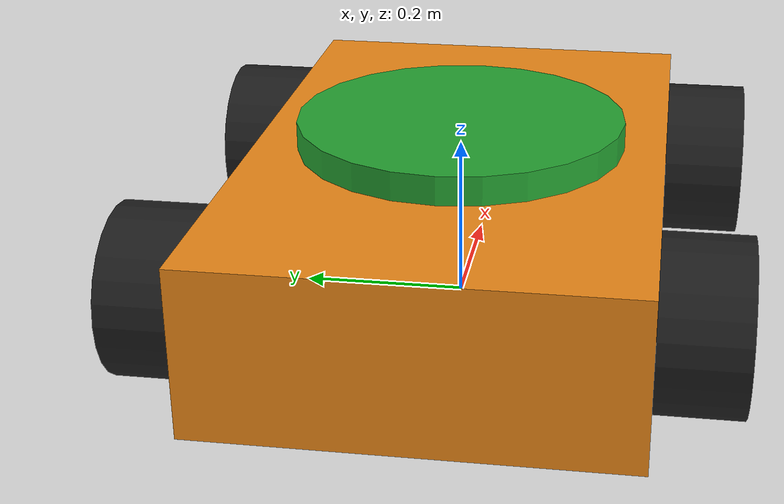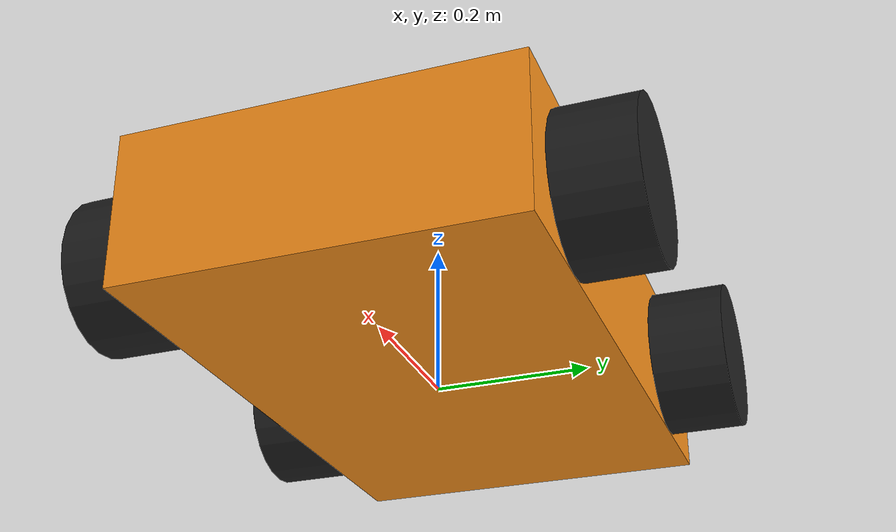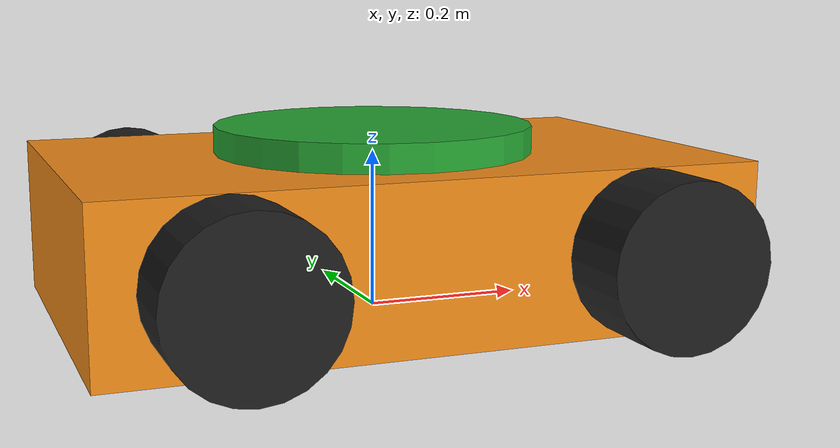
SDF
<?xml version="1.0" ?>
<sdf version="1.5">
  <model name="ugv_rover">
    <static>false</static>
    <link name="chassis">
      <pose>0 0 0.1 0 0 0</pose>
      <inertial>
        <mass>10.0</mass>
        <inertia>
           <ixx>0.5</ixx>
           <ixy>0.0</ixy>
           <ixz>0.0</ixz>
           <iyy>0.5</iyy>
           <iyz>0.0</iyz>
           <izz>0.5</izz>
        </inertia>
      </inertial>

      <collision name="collision">
        <geometry>
          <box>
            <size>0.8 0.5 0.2</size> <!-- 80cm x 50cm chassis -->
          </box>
        </geometry>
      </collision>

      <visual name="visual">
        <geometry>
          <box>
            <size>0.8 0.5 0.2</size>
          </box>
        </geometry>
        <material>
          <script>
            <uri>file://media/materials/scripts/gazebo.material</uri>
            <name>Gazebo/Orange</name>
          </script>
        </material>
      </visual>

      <!-- Charging Pad Symbol -->
      <visual name="pad">
         <pose>0 0 0.11 0 0 0</pose>
         <geometry>
            <cylinder>
              <radius>0.2</radius>
              <length>0.05</length>
            </cylinder>
         </geometry>
         <material>
            <script>
               <name>Gazebo/Green</name>
            </script>
         </material>
      </visual>
    </link>

    <!-- Simple Wheels Visuals (Non-functional for physics, just for looks) -->
    <link name="wheel_lf">
       <pose>0.25 0.3 0.1 -1.5707 0 0</pose>
       <visual name="visual">
         <geometry>
           <cylinder>
             <radius>0.1</radius>
             <length>0.1</length>
           </cylinder>
         </geometry>
         <material>
           <script><name>Gazebo/Black</name></script>
         </material>
       </visual>
    </link>
    <link name="wheel_rf">
       <pose>0.25 -0.3 0.1 -1.5707 0 0</pose>
       <visual name="visual">
         <geometry>
           <cylinder>
             <radius>0.1</radius>
             <length>0.1</length>
           </cylinder>
         </geometry>
         <material>
           <script><name>Gazebo/Black</name></script>
         </material>
       </visual>
    </link>
     <link name="wheel_lr">
       <pose>-0.25 0.3 0.1 -1.5707 0 0</pose>
       <visual name="visual">
         <geometry>
           <cylinder>
             <radius>0.1</radius>
             <length>0.1</length>
           </cylinder>
         </geometry>
         <material>
           <script><name>Gazebo/Black</name></script>
         </material>
       </visual>
    </link>
    <link name="wheel_rr">
       <pose>-0.25 -0.3 0.1 -1.5707 0 0</pose>
       <visual name="visual">
         <geometry>
           <cylinder>
             <radius>0.1</radius>
             <length>0.1</length>
           </cylinder>
         </geometry>
         <material>
           <script><name>Gazebo/Black</name></script>
         </material>
       </visual>
    </link>

    <!-- Joint for chassis movement (Planar move logic would apply here) -->
    <!-- For simplicity, we assume this is a sliding block controlled by force or plugin,
         but since ugv_manager.py manages position logically, this is mostly visual -->

  </model>
</sdf>
